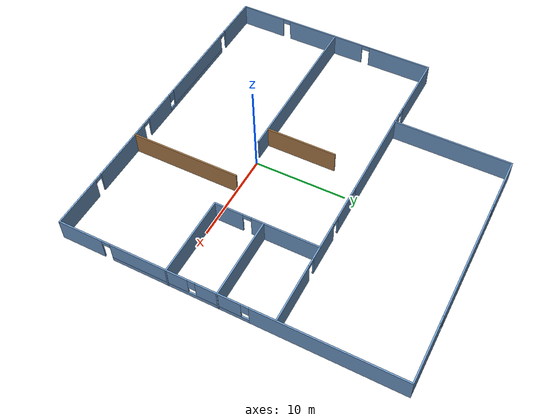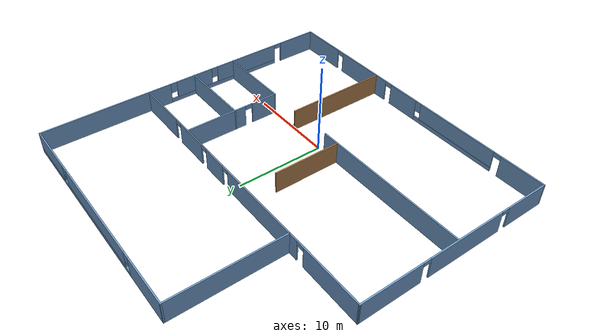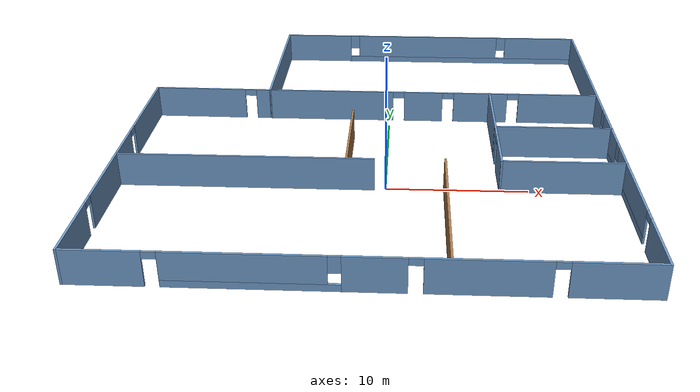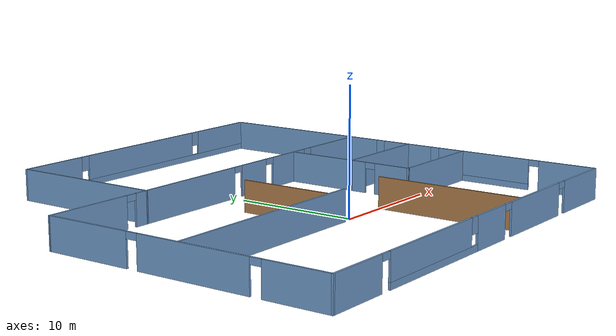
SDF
<?xml version='1.0'?>
<sdf version='1.6'>
  <model name='myhouse'>
    <pose frame=''>-1.20401 5.92541 0 0 -0 0</pose>
    <link name='Wall_0'>
      <pose frame=''>4.61426 17.8 0 0 -0 0</pose>
      <visual name='Wall_0_Visual_0'>
        <pose frame=''>-10.3159 0 1.25 0 -0 0</pose>
        <geometry>
          <box>
            <size>5.86818 0.15 2.5</size>
          </box>
        </geometry>
        <material>
          <script>
            <uri>file://media/materials/scripts/gazebo.material</uri>
            <name>Gazebo/Grey</name>
          </script>
          <ambient>0.447059 0.623529 0.811765 1</ambient>
        </material>
        <meta>
          <layer>0</layer>
        </meta>
      </visual>
      <collision name='Wall_0_Collision_0'>
        <geometry>
          <box>
            <size>5.86818 0.15 2.5</size>
          </box>
        </geometry>
        <pose frame=''>-10.3159 0 1.25 0 -0 0</pose>
      </collision>
      <visual name='Wall_0_Visual_1'>
        <pose frame=''>2.93409 0 0.25 0 -0 0</pose>
        <geometry>
          <box>
            <size>20.6318 0.15 0.5</size>
          </box>
        </geometry>
        <material>
          <script>
            <uri>file://media/materials/scripts/gazebo.material</uri>
            <name>Gazebo/Grey</name>
          </script>
          <ambient>0.447059 0.623529 0.811765 1</ambient>
        </material>
        <meta>
          <layer>0</layer>
        </meta>
      </visual>
      <collision name='Wall_0_Collision_1'>
        <geometry>
          <box>
            <size>20.6318 0.15 0.5</size>
          </box>
        </geometry>
        <pose frame=''>2.93409 0 0.25 0 -0 0</pose>
      </collision>
      <visual name='Wall_0_Visual_2'>
        <pose frame=''>-0.192398 0 1.5 0 -0 0</pose>
        <geometry>
          <box>
            <size>12.7788 0.15 2</size>
          </box>
        </geometry>
        <material>
          <script>
            <uri>file://media/materials/scripts/gazebo.material</uri>
            <name>Gazebo/Grey</name>
          </script>
          <ambient>0.447059 0.623529 0.811765 1</ambient>
        </material>
        <meta>
          <layer>0</layer>
        </meta>
      </visual>
      <collision name='Wall_0_Collision_2'>
        <geometry>
          <box>
            <size>12.7788 0.15 2</size>
          </box>
        </geometry>
        <pose frame=''>-0.192398 0 1.5 0 -0 0</pose>
      </collision>
      <visual name='Wall_0_Visual_3'>
        <pose frame=''>10.1235 0 1.5 0 -0 0</pose>
        <geometry>
          <box>
            <size>6.25298 0.15 2</size>
          </box>
        </geometry>
        <material>
          <script>
            <uri>file://media/materials/scripts/gazebo.material</uri>
            <name>Gazebo/Grey</name>
          </script>
          <ambient>0.447059 0.623529 0.811765 1</ambient>
        </material>
        <meta>
          <layer>0</layer>
        </meta>
      </visual>
      <collision name='Wall_0_Collision_3'>
        <geometry>
          <box>
            <size>6.25298 0.15 2</size>
          </box>
        </geometry>
        <pose frame=''>10.1235 0 1.5 0 -0 0</pose>
      </collision>
      <visual name='Wall_0_Visual_4'>
        <pose frame=''>-6.98182 0 1.9 0 -0 0</pose>
        <geometry>
          <box>
            <size>0.8 0.15 1.2</size>
          </box>
        </geometry>
        <material>
          <script>
            <uri>file://media/materials/scripts/gazebo.material</uri>
            <name>Gazebo/Grey</name>
          </script>
          <ambient>0.447059 0.623529 0.811765 1</ambient>
        </material>
        <meta>
          <layer>0</layer>
        </meta>
      </visual>
      <collision name='Wall_0_Collision_4'>
        <geometry>
          <box>
            <size>0.8 0.15 1.2</size>
          </box>
        </geometry>
        <pose frame=''>-6.98182 0 1.9 0 -0 0</pose>
      </collision>
      <visual name='Wall_0_Visual_5'>
        <pose frame=''>6.59703 0 1.9 0 -0 0</pose>
        <geometry>
          <box>
            <size>0.8 0.15 1.2</size>
          </box>
        </geometry>
        <material>
          <script>
            <uri>file://media/materials/scripts/gazebo.material</uri>
            <name>Gazebo/Grey</name>
          </script>
          <ambient>0.447059 0.623529 0.811765 1</ambient>
        </material>
        <meta>
          <layer>0</layer>
        </meta>
      </visual>
      <collision name='Wall_0_Collision_5'>
        <geometry>
          <box>
            <size>0.8 0.15 1.2</size>
          </box>
        </geometry>
        <pose frame=''>6.59703 0 1.9 0 -0 0</pose>
      </collision>
    </link>
    <link name='Wall_1'>
      <pose frame=''>17.7893 -0 0 0 -0 -1.5708</pose>
      <visual name='Wall_1_Visual_0'>
        <pose frame=''>-10.1951 0 1.25 0 -0 0</pose>
        <geometry>
          <box>
            <size>15.3597 0.15 2.5</size>
          </box>
        </geometry>
        <material>
          <script>
            <uri>file://media/materials/scripts/gazebo.material</uri>
            <name>Gazebo/Grey</name>
          </script>
          <ambient>0.447059 0.623529 0.811765 1</ambient>
        </material>
        <meta>
          <layer>0</layer>
        </meta>
      </visual>
      <collision name='Wall_1_Collision_0'>
        <geometry>
          <box>
            <size>15.3597 0.15 2.5</size>
          </box>
        </geometry>
        <pose frame=''>-10.1951 0 1.25 0 -0 0</pose>
      </collision>
      <visual name='Wall_1_Visual_1'>
        <pose frame=''>15.4336 0 1.25 0 -0 0</pose>
        <geometry>
          <box>
            <size>4.88286 0.15 2.5</size>
          </box>
        </geometry>
        <material>
          <script>
            <uri>file://media/materials/scripts/gazebo.material</uri>
            <name>Gazebo/Grey</name>
          </script>
          <ambient>0.447059 0.623529 0.811765 1</ambient>
        </material>
        <meta>
          <layer>0</layer>
        </meta>
      </visual>
      <collision name='Wall_1_Collision_1'>
        <geometry>
          <box>
            <size>4.88286 0.15 2.5</size>
          </box>
        </geometry>
        <pose frame=''>15.4336 0 1.25 0 -0 0</pose>
      </collision>
      <visual name='Wall_1_Visual_2'>
        <pose frame=''>4.78844 0 0.25 0 -0 0</pose>
        <geometry>
          <box>
            <size>14.6074 0.15 0.5</size>
          </box>
        </geometry>
        <material>
          <script>
            <uri>file://media/materials/scripts/gazebo.material</uri>
            <name>Gazebo/Grey</name>
          </script>
          <ambient>0.447059 0.623529 0.811765 1</ambient>
        </material>
        <meta>
          <layer>0</layer>
        </meta>
      </visual>
      <collision name='Wall_1_Collision_2'>
        <geometry>
          <box>
            <size>14.6074 0.15 0.5</size>
          </box>
        </geometry>
        <pose frame=''>4.78844 0 0.25 0 -0 0</pose>
      </collision>
      <visual name='Wall_1_Visual_3'>
        <pose frame=''>0.613666 0 1.5 0 -0 0</pose>
        <geometry>
          <box>
            <size>4.65784 0.15 2</size>
          </box>
        </geometry>
        <material>
          <script>
            <uri>file://media/materials/scripts/gazebo.material</uri>
            <name>Gazebo/Grey</name>
          </script>
          <ambient>0.447059 0.623529 0.811765 1</ambient>
        </material>
        <meta>
          <layer>0</layer>
        </meta>
      </visual>
      <collision name='Wall_1_Collision_3'>
        <geometry>
          <box>
            <size>4.65784 0.15 2</size>
          </box>
        </geometry>
        <pose frame=''>0.613666 0 1.5 0 -0 0</pose>
      </collision>
      <visual name='Wall_1_Visual_4'>
        <pose frame=''>7.91736 0 1.5 0 -0 0</pose>
        <geometry>
          <box>
            <size>8.34956 0.15 2</size>
          </box>
        </geometry>
        <material>
          <script>
            <uri>file://media/materials/scripts/gazebo.material</uri>
            <name>Gazebo/Grey</name>
          </script>
          <ambient>0.447059 0.623529 0.811765 1</ambient>
        </material>
        <meta>
          <layer>0</layer>
        </meta>
      </visual>
      <collision name='Wall_1_Collision_4'>
        <geometry>
          <box>
            <size>8.34956 0.15 2</size>
          </box>
        </geometry>
        <pose frame=''>7.91736 0 1.5 0 -0 0</pose>
      </collision>
      <visual name='Wall_1_Visual_5'>
        <pose frame=''>-2.11525 0 1.9 0 -0 0</pose>
        <geometry>
          <box>
            <size>0.8 0.15 1.2</size>
          </box>
        </geometry>
        <material>
          <script>
            <uri>file://media/materials/scripts/gazebo.material</uri>
            <name>Gazebo/Grey</name>
          </script>
          <ambient>0.447059 0.623529 0.811765 1</ambient>
        </material>
        <meta>
          <layer>0</layer>
        </meta>
      </visual>
      <collision name='Wall_1_Collision_5'>
        <geometry>
          <box>
            <size>0.8 0.15 1.2</size>
          </box>
        </geometry>
        <pose frame=''>-2.11525 0 1.9 0 -0 0</pose>
      </collision>
      <visual name='Wall_1_Visual_6'>
        <pose frame=''>3.34259 0 1.9 0 -0 0</pose>
        <geometry>
          <box>
            <size>0.8 0.15 1.2</size>
          </box>
        </geometry>
        <material>
          <script>
            <uri>file://media/materials/scripts/gazebo.material</uri>
            <name>Gazebo/Grey</name>
          </script>
          <ambient>0.447059 0.623529 0.811765 1</ambient>
        </material>
        <meta>
          <layer>0</layer>
        </meta>
      </visual>
      <collision name='Wall_1_Collision_6'>
        <geometry>
          <box>
            <size>0.8 0.15 1.2</size>
          </box>
        </geometry>
        <pose frame=''>3.34259 0 1.9 0 -0 0</pose>
      </collision>
      <visual name='Wall_1_Visual_7'>
        <pose frame=''>12.5421 0 2.25 0 -0 0</pose>
        <geometry>
          <box>
            <size>0.9 0.15 0.5</size>
          </box>
        </geometry>
        <material>
          <script>
            <uri>file://media/materials/scripts/gazebo.material</uri>
            <name>Gazebo/Grey</name>
          </script>
          <ambient>0.447059 0.623529 0.811765 1</ambient>
        </material>
        <meta>
          <layer>0</layer>
        </meta>
      </visual>
      <collision name='Wall_1_Collision_7'>
        <geometry>
          <box>
            <size>0.9 0.15 0.5</size>
          </box>
        </geometry>
        <pose frame=''>12.5421 0 2.25 0 -0 0</pose>
      </collision>
    </link>
    <link name='Wall_10'>
      <pose frame=''>9.21154 -0.400105 0 0 -0 -1.5708</pose>
      <visual name='Wall_10_Visual_0'>
        <pose frame=''>-2.03081 0 1.25 0 -0 0</pose>
        <geometry>
          <box>
            <size>7.26684 0.15 2.5</size>
          </box>
        </geometry>
        <material>
          <script>
            <uri>file://media/materials/scripts/gazebo.material</uri>
            <name>Gazebo/Grey</name>
          </script>
          <ambient>0.447059 0.623529 0.811765 1</ambient>
        </material>
        <meta>
          <layer>0</layer>
        </meta>
      </visual>
      <collision name='Wall_10_Collision_0'>
        <geometry>
          <box>
            <size>7.26684 0.15 2.5</size>
          </box>
        </geometry>
        <pose frame=''>-2.03081 0 1.25 0 -0 0</pose>
      </collision>
      <visual name='Wall_10_Visual_1'>
        <pose frame=''>4.08342 0 1.25 0 -0 0</pose>
        <geometry>
          <box>
            <size>3.16161 0.15 2.5</size>
          </box>
        </geometry>
        <material>
          <script>
            <uri>file://media/materials/scripts/gazebo.material</uri>
            <name>Gazebo/Grey</name>
          </script>
          <ambient>0.447059 0.623529 0.811765 1</ambient>
        </material>
        <meta>
          <layer>0</layer>
        </meta>
      </visual>
      <collision name='Wall_10_Collision_1'>
        <geometry>
          <box>
            <size>3.16161 0.15 2.5</size>
          </box>
        </geometry>
        <pose frame=''>4.08342 0 1.25 0 -0 0</pose>
      </collision>
      <visual name='Wall_10_Visual_2'>
        <pose frame=''>2.05262 0 2.25 0 -0 0</pose>
        <geometry>
          <box>
            <size>0.9 0.15 0.5</size>
          </box>
        </geometry>
        <material>
          <script>
            <uri>file://media/materials/scripts/gazebo.material</uri>
            <name>Gazebo/Grey</name>
          </script>
          <ambient>0.447059 0.623529 0.811765 1</ambient>
        </material>
        <meta>
          <layer>0</layer>
        </meta>
      </visual>
      <collision name='Wall_10_Collision_2'>
        <geometry>
          <box>
            <size>0.9 0.15 0.5</size>
          </box>
        </geometry>
        <pose frame=''>2.05262 0 2.25 0 -0 0</pose>
      </collision>
    </link>
    <link name='Wall_13'>
      <collision name='Wall_13_Collision'>
        <geometry>
          <box>
            <size>8.75 0.15 2.5</size>
          </box>
        </geometry>
        <pose frame=''>0 0 1.25 0 -0 0</pose>
      </collision>
      <visual name='Wall_13_Visual'>
        <pose frame=''>0 0 1.25 0 -0 0</pose>
        <geometry>
          <box>
            <size>8.75 0.15 2.5</size>
          </box>
        </geometry>
        <material>
          <script>
            <uri>file://media/materials/scripts/gazebo.material</uri>
            <name>Gazebo/Grey</name>
          </script>
          <ambient>0.447059 0.623529 0.811765 1</ambient>
        </material>
        <meta>
          <layer>0</layer>
        </meta>
      </visual>
      <pose frame=''>13.5115 -5.98933 0 0 -0 0</pose>
    </link>
    <link name='Wall_15'>
      <collision name='Wall_15_Collision'>
        <geometry>
          <box>
            <size>8.75 0.15 2.5</size>
          </box>
        </geometry>
        <pose frame=''>0 0 1.25 0 -0 0</pose>
      </collision>
      <visual name='Wall_15_Visual'>
        <pose frame=''>0 0 1.25 0 -0 0</pose>
        <geometry>
          <box>
            <size>8.75 0.15 2.5</size>
          </box>
        </geometry>
        <material>
          <script>
            <uri>file://media/materials/scripts/gazebo.material</uri>
            <name>Gazebo/Grey</name>
          </script>
          <ambient>0.447059 0.623529 0.811765 1</ambient>
        </material>
        <meta>
          <layer>0</layer>
        </meta>
      </visual>
      <pose frame=''>13.5114 -0.669808 0 0 -0 0</pose>
    </link>
    <link name='Wall_17'>
      <collision name='Wall_17_Collision'>
        <geometry>
          <box>
            <size>18.25 0.15 2.5</size>
          </box>
        </geometry>
        <pose frame=''>0 0 1.25 0 -0 0</pose>
      </collision>
      <visual name='Wall_17_Visual'>
        <pose frame=''>0 0 1.25 0 -0 0</pose>
        <geometry>
          <box>
            <size>18.25 0.15 2.5</size>
          </box>
        </geometry>
        <material>
          <script>
            <uri>file://media/materials/scripts/gazebo.material</uri>
            <name>Gazebo/Grey</name>
          </script>
          <ambient>0.447059 0.623529 0.811765 1</ambient>
        </material>
        <meta>
          <layer>0</layer>
        </meta>
      </visual>
      <pose frame=''>-8.72356 -6.06182 0 0 -0 0</pose>
    </link>
    <link name='Wall_19'>
      <collision name='Wall_19_Collision'>
        <geometry>
          <box>
            <size>7.75 0.15 2.5</size>
          </box>
        </geometry>
        <pose frame=''>0 0 1.25 0 -0 0</pose>
      </collision>
      <visual name='Wall_19_Visual'>
        <pose frame=''>0 0 1.25 0 -0 0</pose>
        <geometry>
          <box>
            <size>7.75 0.15 2.5</size>
          </box>
        </geometry>
        <material>
          <script>
            <uri>file://media/materials/scripts/gazebo.material</uri>
            <name>Gazebo/Wood</name>
          </script>
          <ambient>1 1 1 1</ambient>
        </material>
        <meta>
          <layer>0</layer>
        </meta>
      </visual>
      <pose frame=''>-1.57819 -2.2167 0 0 -0 1.5708</pose>
    </link>
    <link name='Wall_2'>
      <pose frame=''>-0.010735 -17.8 0 0 -0 3.14159</pose>
      <visual name='Wall_2_Visual_0'>
        <pose frame=''>-15.0259 0 1.25 0 -0 0</pose>
        <geometry>
          <box>
            <size>5.69813 0.15 2.5</size>
          </box>
        </geometry>
        <material>
          <script>
            <uri>file://media/materials/scripts/gazebo.material</uri>
            <name>Gazebo/Grey</name>
          </script>
          <ambient>0.447059 0.623529 0.811765 1</ambient>
        </material>
        <meta>
          <layer>0</layer>
        </meta>
      </visual>
      <collision name='Wall_2_Collision_0'>
        <geometry>
          <box>
            <size>5.69813 0.15 2.5</size>
          </box>
        </geometry>
        <pose frame=''>-15.0259 0 1.25 0 -0 0</pose>
      </collision>
      <visual name='Wall_2_Visual_1'>
        <pose frame=''>-7.50561 0 1.25 0 -0 0</pose>
        <geometry>
          <box>
            <size>7.54251 0.15 2.5</size>
          </box>
        </geometry>
        <material>
          <script>
            <uri>file://media/materials/scripts/gazebo.material</uri>
            <name>Gazebo/Grey</name>
          </script>
          <ambient>0.447059 0.623529 0.811765 1</ambient>
        </material>
        <meta>
          <layer>0</layer>
        </meta>
      </visual>
      <collision name='Wall_2_Collision_1'>
        <geometry>
          <box>
            <size>7.54251 0.15 2.5</size>
          </box>
        </geometry>
        <pose frame=''>-7.50561 0 1.25 0 -0 0</pose>
      </collision>
      <visual name='Wall_2_Visual_2'>
        <pose frame=''>-0.885398 0 1.25 0 -0 0</pose>
        <geometry>
          <box>
            <size>3.89792 0.15 2.5</size>
          </box>
        </geometry>
        <material>
          <script>
            <uri>file://media/materials/scripts/gazebo.material</uri>
            <name>Gazebo/Grey</name>
          </script>
          <ambient>0.447059 0.623529 0.811765 1</ambient>
        </material>
        <meta>
          <layer>0</layer>
        </meta>
      </visual>
      <collision name='Wall_2_Collision_2'>
        <geometry>
          <box>
            <size>3.89792 0.15 2.5</size>
          </box>
        </geometry>
        <pose frame=''>-0.885398 0 1.25 0 -0 0</pose>
      </collision>
      <visual name='Wall_2_Visual_3'>
        <pose frame=''>15.3234 0 1.25 0 -0 0</pose>
        <geometry>
          <box>
            <size>5.10327 0.15 2.5</size>
          </box>
        </geometry>
        <material>
          <script>
            <uri>file://media/materials/scripts/gazebo.material</uri>
            <name>Gazebo/Grey</name>
          </script>
          <ambient>0.447059 0.623529 0.811765 1</ambient>
        </material>
        <meta>
          <layer>0</layer>
        </meta>
      </visual>
      <collision name='Wall_2_Collision_3'>
        <geometry>
          <box>
            <size>5.10327 0.15 2.5</size>
          </box>
        </geometry>
        <pose frame=''>15.3234 0 1.25 0 -0 0</pose>
      </collision>
      <visual name='Wall_2_Visual_4'>
        <pose frame=''>6.46765 0 0.25 0 -0 0</pose>
        <geometry>
          <box>
            <size>10.8082 0.15 0.5</size>
          </box>
        </geometry>
        <material>
          <script>
            <uri>file://media/materials/scripts/gazebo.material</uri>
            <name>Gazebo/Grey</name>
          </script>
          <ambient>0.447059 0.623529 0.811765 1</ambient>
        </material>
        <meta>
          <layer>0</layer>
        </meta>
      </visual>
      <collision name='Wall_2_Collision_4'>
        <geometry>
          <box>
            <size>10.8082 0.15 0.5</size>
          </box>
        </geometry>
        <pose frame=''>6.46765 0 0.25 0 -0 0</pose>
      </collision>
      <visual name='Wall_2_Visual_5'>
        <pose frame=''>6.86765 0 1.5 0 -0 0</pose>
        <geometry>
          <box>
            <size>10.0082 0.15 2</size>
          </box>
        </geometry>
        <material>
          <script>
            <uri>file://media/materials/scripts/gazebo.material</uri>
            <name>Gazebo/Grey</name>
          </script>
          <ambient>0.447059 0.623529 0.811765 1</ambient>
        </material>
        <meta>
          <layer>0</layer>
        </meta>
      </visual>
      <collision name='Wall_2_Collision_5'>
        <geometry>
          <box>
            <size>10.0082 0.15 2</size>
          </box>
        </geometry>
        <pose frame=''>6.86765 0 1.5 0 -0 0</pose>
      </collision>
      <visual name='Wall_2_Visual_6'>
        <pose frame=''>1.46356 0 1.9 0 -0 0</pose>
        <geometry>
          <box>
            <size>0.8 0.15 1.2</size>
          </box>
        </geometry>
        <material>
          <script>
            <uri>file://media/materials/scripts/gazebo.material</uri>
            <name>Gazebo/Grey</name>
          </script>
          <ambient>0.447059 0.623529 0.811765 1</ambient>
        </material>
        <meta>
          <layer>0</layer>
        </meta>
      </visual>
      <collision name='Wall_2_Collision_6'>
        <geometry>
          <box>
            <size>0.8 0.15 1.2</size>
          </box>
        </geometry>
        <pose frame=''>1.46356 0 1.9 0 -0 0</pose>
      </collision>
      <visual name='Wall_2_Visual_7'>
        <pose frame=''>-11.7269 0 2.25 0 -0 0</pose>
        <geometry>
          <box>
            <size>0.9 0.15 0.5</size>
          </box>
        </geometry>
        <material>
          <script>
            <uri>file://media/materials/scripts/gazebo.material</uri>
            <name>Gazebo/Grey</name>
          </script>
          <ambient>0.447059 0.623529 0.811765 1</ambient>
        </material>
        <meta>
          <layer>0</layer>
        </meta>
      </visual>
      <collision name='Wall_2_Collision_7'>
        <geometry>
          <box>
            <size>0.9 0.15 0.5</size>
          </box>
        </geometry>
        <pose frame=''>-11.7269 0 2.25 0 -0 0</pose>
      </collision>
      <visual name='Wall_2_Visual_8'>
        <pose frame=''>-3.28436 0 2.25 0 -0 0</pose>
        <geometry>
          <box>
            <size>0.9 0.15 0.5</size>
          </box>
        </geometry>
        <material>
          <script>
            <uri>file://media/materials/scripts/gazebo.material</uri>
            <name>Gazebo/Grey</name>
          </script>
          <ambient>0.447059 0.623529 0.811765 1</ambient>
        </material>
        <meta>
          <layer>0</layer>
        </meta>
      </visual>
      <collision name='Wall_2_Collision_8'>
        <geometry>
          <box>
            <size>0.9 0.15 0.5</size>
          </box>
        </geometry>
        <pose frame=''>-3.28436 0 2.25 0 -0 0</pose>
      </collision>
      <visual name='Wall_2_Visual_9'>
        <pose frame=''>12.3217 0 2.25 0 -0 0</pose>
        <geometry>
          <box>
            <size>0.9 0.15 0.5</size>
          </box>
        </geometry>
        <material>
          <script>
            <uri>file://media/materials/scripts/gazebo.material</uri>
            <name>Gazebo/Grey</name>
          </script>
          <ambient>0.447059 0.623529 0.811765 1</ambient>
        </material>
        <meta>
          <layer>0</layer>
        </meta>
      </visual>
      <collision name='Wall_2_Collision_9'>
        <geometry>
          <box>
            <size>0.9 0.15 0.5</size>
          </box>
        </geometry>
        <pose frame=''>12.3217 0 2.25 0 -0 0</pose>
      </collision>
    </link>
    <link name='Wall_23'>
      <collision name='Wall_23_Collision'>
        <geometry>
          <box>
            <size>12 0.15 2.5</size>
          </box>
        </geometry>
        <pose frame=''>0 0 1.25 0 -0 0</pose>
      </collision>
      <visual name='Wall_23_Visual'>
        <pose frame=''>0 0 1.25 0 -0 0</pose>
        <geometry>
          <box>
            <size>12 0.15 2.5</size>
          </box>
        </geometry>
        <material>
          <script>
            <uri>file://media/materials/scripts/gazebo.material</uri>
            <name>Gazebo/Wood</name>
          </script>
          <ambient>1 1 1 1</ambient>
        </material>
        <meta>
          <layer>0</layer>
        </meta>
      </visual>
      <pose frame=''>5.32796 -11.8207 0 0 -0 1.5708</pose>
    </link>
    <link name='Wall_3'>
      <pose frame=''>-17.8107 -6.25 0 0 -0 1.5708</pose>
      <visual name='Wall_3_Visual_0'>
        <pose frame=''>-9.02802 0 1.25 0 -0 0</pose>
        <geometry>
          <box>
            <size>5.19397 0.15 2.5</size>
          </box>
        </geometry>
        <material>
          <script>
            <uri>file://media/materials/scripts/gazebo.material</uri>
            <name>Gazebo/Grey</name>
          </script>
          <ambient>0.447059 0.623529 0.811765 1</ambient>
        </material>
        <meta>
          <layer>0</layer>
        </meta>
      </visual>
      <collision name='Wall_3_Collision_0'>
        <geometry>
          <box>
            <size>5.19397 0.15 2.5</size>
          </box>
        </geometry>
        <pose frame=''>-9.02802 0 1.25 0 -0 0</pose>
      </collision>
      <visual name='Wall_3_Visual_1'>
        <pose frame=''>-0.961315 0 1.25 0 -0 0</pose>
        <geometry>
          <box>
            <size>9.13944 0.15 2.5</size>
          </box>
        </geometry>
        <material>
          <script>
            <uri>file://media/materials/scripts/gazebo.material</uri>
            <name>Gazebo/Grey</name>
          </script>
          <ambient>0.447059 0.623529 0.811765 1</ambient>
        </material>
        <meta>
          <layer>0</layer>
        </meta>
      </visual>
      <collision name='Wall_3_Collision_1'>
        <geometry>
          <box>
            <size>9.13944 0.15 2.5</size>
          </box>
        </geometry>
        <pose frame=''>-0.961315 0 1.25 0 -0 0</pose>
      </collision>
      <visual name='Wall_3_Visual_2'>
        <pose frame=''>8.0667 0 1.25 0 -0 0</pose>
        <geometry>
          <box>
            <size>7.1166 0.15 2.5</size>
          </box>
        </geometry>
        <material>
          <script>
            <uri>file://media/materials/scripts/gazebo.material</uri>
            <name>Gazebo/Grey</name>
          </script>
          <ambient>0.447059 0.623529 0.811765 1</ambient>
        </material>
        <meta>
          <layer>0</layer>
        </meta>
      </visual>
      <collision name='Wall_3_Collision_2'>
        <geometry>
          <box>
            <size>7.1166 0.15 2.5</size>
          </box>
        </geometry>
        <pose frame=''>8.0667 0 1.25 0 -0 0</pose>
      </collision>
      <visual name='Wall_3_Visual_3'>
        <pose frame=''>-5.98103 0 2.25 0 -0 0</pose>
        <geometry>
          <box>
            <size>0.9 0.15 0.5</size>
          </box>
        </geometry>
        <material>
          <script>
            <uri>file://media/materials/scripts/gazebo.material</uri>
            <name>Gazebo/Grey</name>
          </script>
          <ambient>0.447059 0.623529 0.811765 1</ambient>
        </material>
        <meta>
          <layer>0</layer>
        </meta>
      </visual>
      <collision name='Wall_3_Collision_3'>
        <geometry>
          <box>
            <size>0.9 0.15 0.5</size>
          </box>
        </geometry>
        <pose frame=''>-5.98103 0 2.25 0 -0 0</pose>
      </collision>
      <visual name='Wall_3_Visual_4'>
        <pose frame=''>4.0584 0 2.25 0 -0 0</pose>
        <geometry>
          <box>
            <size>0.9 0.15 0.5</size>
          </box>
        </geometry>
        <material>
          <script>
            <uri>file://media/materials/scripts/gazebo.material</uri>
            <name>Gazebo/Grey</name>
          </script>
          <ambient>0.447059 0.623529 0.811765 1</ambient>
        </material>
        <meta>
          <layer>0</layer>
        </meta>
      </visual>
      <collision name='Wall_3_Collision_4'>
        <geometry>
          <box>
            <size>0.9 0.15 0.5</size>
          </box>
        </geometry>
        <pose frame=''>4.0584 0 2.25 0 -0 0</pose>
      </collision>
    </link>
    <link name='Wall_5'>
      <collision name='Wall_5_Collision'>
        <geometry>
          <box>
            <size>12.75 0.15 2.5</size>
          </box>
        </geometry>
        <pose frame=''>0 0 1.25 0 -0 0</pose>
      </collision>
      <visual name='Wall_5_Visual'>
        <pose frame=''>0 0 1.25 0 -0 0</pose>
        <geometry>
          <box>
            <size>12.75 0.15 2.5</size>
          </box>
        </geometry>
        <material>
          <script>
            <uri>file://media/materials/scripts/gazebo.material</uri>
            <name>Gazebo/Grey</name>
          </script>
          <ambient>0.447059 0.623529 0.811765 1</ambient>
        </material>
        <meta>
          <layer>0</layer>
        </meta>
      </visual>
      <pose frame=''>-8.56073 11.5 0 0 -0 -1.5708</pose>
    </link>
    <link name='Wall_6'>
      <pose frame=''>-13.1857 5.25 0 0 -0 3.13078</pose>
      <visual name='Wall_6_Visual_0'>
        <pose frame=''>-4.09582 0 1.25 0 -0 0</pose>
        <geometry>
          <box>
            <size>1.2089 0.15 2.5</size>
          </box>
        </geometry>
        <material>
          <script>
            <uri>file://media/materials/scripts/gazebo.material</uri>
            <name>Gazebo/Grey</name>
          </script>
          <ambient>0.447059 0.623529 0.811765 1</ambient>
        </material>
        <meta>
          <layer>0</layer>
        </meta>
      </visual>
      <collision name='Wall_6_Collision_0'>
        <geometry>
          <box>
            <size>1.2089 0.15 2.5</size>
          </box>
        </geometry>
        <pose frame=''>-4.09582 0 1.25 0 -0 0</pose>
      </collision>
      <visual name='Wall_6_Visual_1'>
        <pose frame=''>1.05445 0 1.25 0 -0 0</pose>
        <geometry>
          <box>
            <size>7.29164 0.15 2.5</size>
          </box>
        </geometry>
        <material>
          <script>
            <uri>file://media/materials/scripts/gazebo.material</uri>
            <name>Gazebo/Grey</name>
          </script>
          <ambient>0.447059 0.623529 0.811765 1</ambient>
        </material>
        <meta>
          <layer>0</layer>
        </meta>
      </visual>
      <collision name='Wall_6_Collision_1'>
        <geometry>
          <box>
            <size>7.29164 0.15 2.5</size>
          </box>
        </geometry>
        <pose frame=''>1.05445 0 1.25 0 -0 0</pose>
      </collision>
      <visual name='Wall_6_Visual_2'>
        <pose frame=''>-3.04137 0 2.25 0 -0 0</pose>
        <geometry>
          <box>
            <size>0.9 0.15 0.5</size>
          </box>
        </geometry>
        <material>
          <script>
            <uri>file://media/materials/scripts/gazebo.material</uri>
            <name>Gazebo/Grey</name>
          </script>
          <ambient>0.447059 0.623529 0.811765 1</ambient>
        </material>
        <meta>
          <layer>0</layer>
        </meta>
      </visual>
      <collision name='Wall_6_Collision_2'>
        <geometry>
          <box>
            <size>0.9 0.15 0.5</size>
          </box>
        </geometry>
        <pose frame=''>-3.04137 0 2.25 0 -0 0</pose>
      </collision>
    </link>
    <link name='Wall_8'>
      <pose frame=''>4.61426 5.2 0 0 -0 0</pose>
      <visual name='Wall_8_Visual_0'>
        <pose frame=''>-8.20743 0 1.25 0 -0 0</pose>
        <geometry>
          <box>
            <size>10.0851 0.15 2.5</size>
          </box>
        </geometry>
        <material>
          <script>
            <uri>file://media/materials/scripts/gazebo.material</uri>
            <name>Gazebo/Grey</name>
          </script>
          <ambient>0.447059 0.623529 0.811765 1</ambient>
        </material>
        <meta>
          <layer>0</layer>
        </meta>
      </visual>
      <collision name='Wall_8_Collision_0'>
        <geometry>
          <box>
            <size>10.0851 0.15 2.5</size>
          </box>
        </geometry>
        <pose frame=''>-8.20743 0 1.25 0 -0 0</pose>
      </collision>
      <visual name='Wall_8_Visual_1'>
        <pose frame=''>-0.725872 0 1.25 0 -0 0</pose>
        <geometry>
          <box>
            <size>3.07799 0.15 2.5</size>
          </box>
        </geometry>
        <material>
          <script>
            <uri>file://media/materials/scripts/gazebo.material</uri>
            <name>Gazebo/Grey</name>
          </script>
          <ambient>0.447059 0.623529 0.811765 1</ambient>
        </material>
        <meta>
          <layer>0</layer>
        </meta>
      </visual>
      <collision name='Wall_8_Collision_1'>
        <geometry>
          <box>
            <size>3.07799 0.15 2.5</size>
          </box>
        </geometry>
        <pose frame=''>-0.725872 0 1.25 0 -0 0</pose>
      </collision>
      <visual name='Wall_8_Visual_2'>
        <pose frame=''>3.86689 0 1.25 0 -0 0</pose>
        <geometry>
          <box>
            <size>4.30753 0.15 2.5</size>
          </box>
        </geometry>
        <material>
          <script>
            <uri>file://media/materials/scripts/gazebo.material</uri>
            <name>Gazebo/Grey</name>
          </script>
          <ambient>0.447059 0.623529 0.811765 1</ambient>
        </material>
        <meta>
          <layer>0</layer>
        </meta>
      </visual>
      <collision name='Wall_8_Collision_2'>
        <geometry>
          <box>
            <size>4.30753 0.15 2.5</size>
          </box>
        </geometry>
        <pose frame=''>3.86689 0 1.25 0 -0 0</pose>
      </collision>
      <visual name='Wall_8_Visual_3'>
        <pose frame=''>10.0853 0 1.25 0 -0 0</pose>
        <geometry>
          <box>
            <size>6.32935 0.15 2.5</size>
          </box>
        </geometry>
        <material>
          <script>
            <uri>file://media/materials/scripts/gazebo.material</uri>
            <name>Gazebo/Grey</name>
          </script>
          <ambient>0.447059 0.623529 0.811765 1</ambient>
        </material>
        <meta>
          <layer>0</layer>
        </meta>
      </visual>
      <collision name='Wall_8_Collision_3'>
        <geometry>
          <box>
            <size>6.32935 0.15 2.5</size>
          </box>
        </geometry>
        <pose frame=''>10.0853 0 1.25 0 -0 0</pose>
      </collision>
      <visual name='Wall_8_Visual_4'>
        <pose frame=''>-2.71487 0 2.25 0 -0 0</pose>
        <geometry>
          <box>
            <size>0.9 0.15 0.5</size>
          </box>
        </geometry>
        <material>
          <script>
            <uri>file://media/materials/scripts/gazebo.material</uri>
            <name>Gazebo/Grey</name>
          </script>
          <ambient>0.447059 0.623529 0.811765 1</ambient>
        </material>
        <meta>
          <layer>0</layer>
        </meta>
      </visual>
      <collision name='Wall_8_Collision_4'>
        <geometry>
          <box>
            <size>0.9 0.15 0.5</size>
          </box>
        </geometry>
        <pose frame=''>-2.71487 0 2.25 0 -0 0</pose>
      </collision>
      <visual name='Wall_8_Visual_5'>
        <pose frame=''>1.26312 0 2.25 0 -0 0</pose>
        <geometry>
          <box>
            <size>0.9 0.15 0.5</size>
          </box>
        </geometry>
        <material>
          <script>
            <uri>file://media/materials/scripts/gazebo.material</uri>
            <name>Gazebo/Grey</name>
          </script>
          <ambient>0.447059 0.623529 0.811765 1</ambient>
        </material>
        <meta>
          <layer>0</layer>
        </meta>
      </visual>
      <collision name='Wall_8_Collision_5'>
        <geometry>
          <box>
            <size>0.9 0.15 0.5</size>
          </box>
        </geometry>
        <pose frame=''>1.26312 0 2.25 0 -0 0</pose>
      </collision>
      <visual name='Wall_8_Visual_6'>
        <pose frame=''>6.47065 0 2.25 0 -0 0</pose>
        <geometry>
          <box>
            <size>0.9 0.15 0.5</size>
          </box>
        </geometry>
        <material>
          <script>
            <uri>file://media/materials/scripts/gazebo.material</uri>
            <name>Gazebo/Grey</name>
          </script>
          <ambient>0.447059 0.623529 0.811765 1</ambient>
        </material>
        <meta>
          <layer>0</layer>
        </meta>
      </visual>
      <collision name='Wall_8_Collision_6'>
        <geometry>
          <box>
            <size>0.9 0.15 0.5</size>
          </box>
        </geometry>
        <pose frame=''>6.47065 0 2.25 0 -0 0</pose>
      </collision>
    </link>
    <static>1</static>
  </model>
</sdf>
